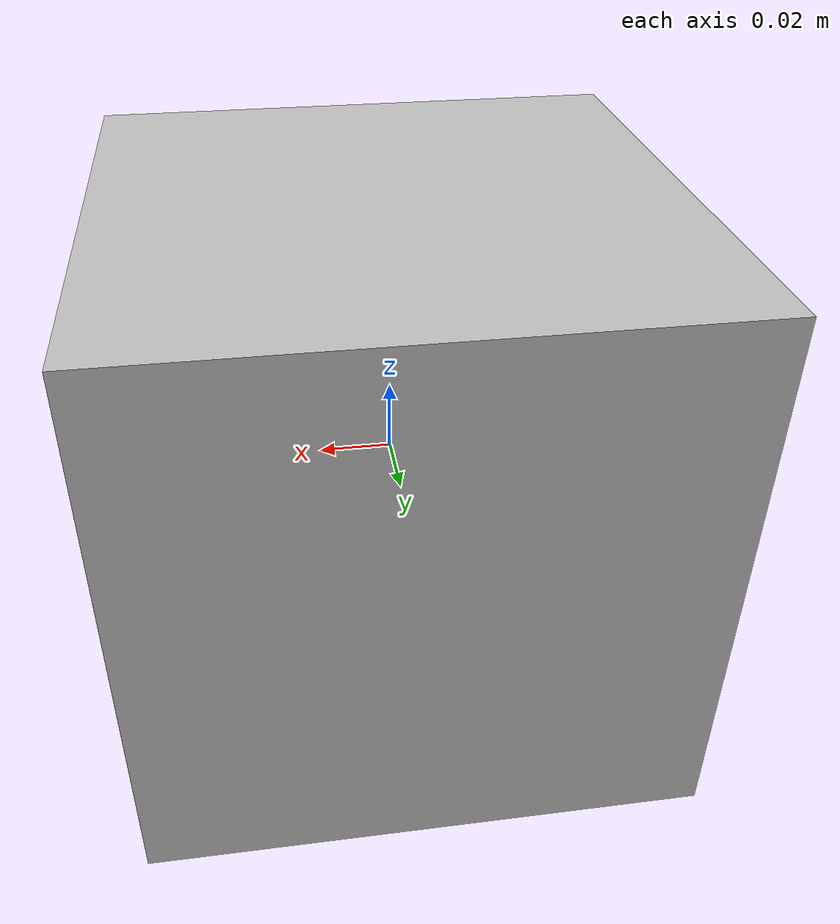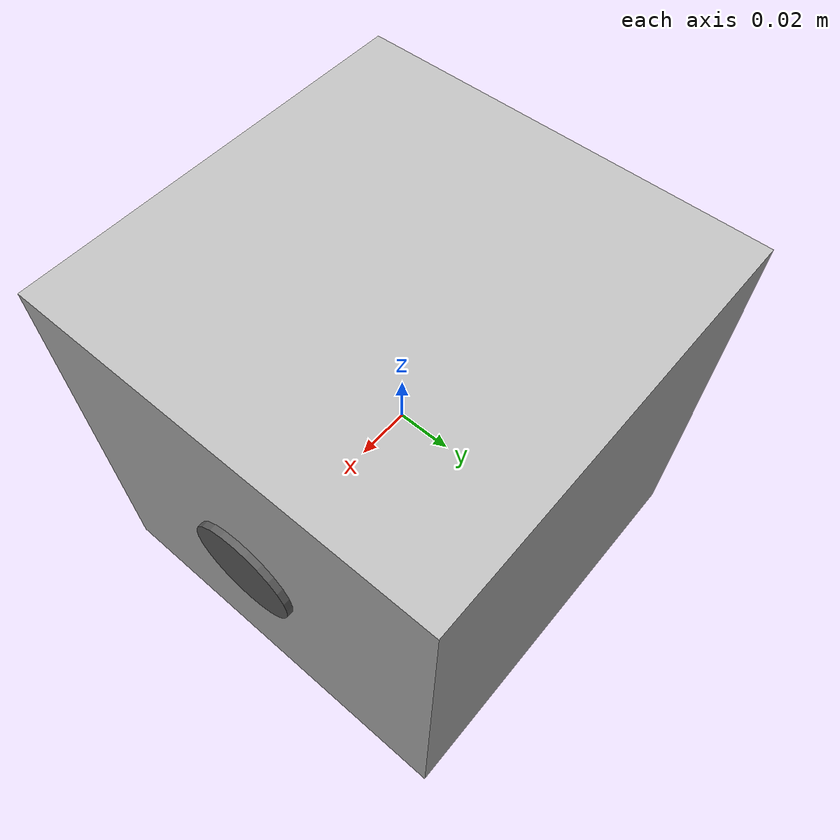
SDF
<sdf version='1.9'>
  <model name='axis_camera'>
    <link name='wall_link'>
      <inertial>
        <pose>0 0 0 0 0 0</pose>
        <mass>2</mass>
        <inertia>
          <ixx>0.053333333333333337</ixx>
          <ixy>0</ixy>
          <ixz>0</ixz>
          <iyy>0.053333333333333337</iyy>
          <iyz>0</iyz>
          <izz>0.053333333333333337</izz>
        </inertia>
      </inertial>
      <gravity>false</gravity>
    </link>
    <joint name='pan_joint' type='revolute'>
      <pose relative_to='wall_link'>0 0 0 0 0 0</pose>
      <parent>wall_link</parent>
      <child>pan_link</child>
      <axis>
        <xyz>0 0 1</xyz>
        <limit>
          <lower>-600.27999999999997</lower>
          <upper>600.27999999999997</upper>
          <effort>1000</effort>
          <velocity>30</velocity>
        </limit>
        <dynamics>
          <damping>0</damping>
          <friction>0</friction>
          <spring_reference>0</spring_reference>
          <spring_stiffness>0</spring_stiffness>
        </dynamics>
      </axis>
    </joint>
    <link name='pan_link'>
      <pose relative_to='pan_joint'>0 0 0 0 0 0</pose>
      <inertial>
        <pose>0 0 0 0 0 0</pose>
        <mass>9.9999999999999995e-07</mass>
        <inertia>
          <ixx>1.6666666666666671e-11</ixx>
          <ixy>0</ixy>
          <ixz>0</ixz>
          <iyy>1.6666666666666671e-11</iyy>
          <iyz>0</iyz>
          <izz>1.6666666666666671e-11</izz>
        </inertia>
      </inertial>
      <gravity>false</gravity>
    </link>
    <joint name='tilt_joint' type='revolute'>
      <pose relative_to='pan_link'>0 0 0 0 0 0</pose>
      <parent>pan_link</parent>
      <child>tilt_link</child>
      <axis>
        <xyz>0 1 0</xyz>
        <limit>
          <lower>-600.27999999999997</lower>
          <upper>600.27999999999997</upper>
          <effort>1000</effort>
          <velocity>30</velocity>
        </limit>
        <dynamics>
          <damping>0</damping>
          <friction>0</friction>
          <spring_reference>0</spring_reference>
          <spring_stiffness>0</spring_stiffness>
        </dynamics>
      </axis>
    </joint>
    <link name='tilt_link'>
      <pose relative_to='tilt_joint'>0 0 0 0 0 0</pose>
      <inertial>
        <pose>0 0 0 0 0 0</pose>
        <mass>9.9999999999999995e-07</mass>
        <inertia>
          <ixx>1.6666666666666671e-11</ixx>
          <ixy>0</ixy>
          <ixz>0</ixz>
          <iyy>1.6666666666666671e-11</iyy>
          <iyz>0</iyz>
          <izz>1.6666666666666671e-11</izz>
        </inertia>
      </inertial>
      <gravity>false</gravity>
    </link>
    <joint name='chassis_joint' type='fixed'>
      <pose relative_to='tilt_link'>0 0 0 0 0 0</pose>
      <parent>tilt_link</parent>
      <child>chassis_link</child>
      <axis>
        <dynamics>
          <spring_reference>0</spring_reference>
          <spring_stiffness>0</spring_stiffness>
        </dynamics>
        <xyz>0 0 1</xyz>
        <limit>
          <lower>-10000000000000000</lower>
          <upper>10000000000000000</upper>
        </limit>
      </axis>
      <physics>
        <ode>
          <limit>
            <cfm>0</cfm>
            <erp>0.20000000000000001</erp>
          </limit>
        </ode>
      </physics>
    </joint>
    <link name='chassis_link'>
      <pose relative_to='chassis_joint'>0 0 0 0 0 0</pose>
      <inertial>
        <pose>0 0 0 0 0 0</pose>
        <mass>9.9999999999999995e-07</mass>
        <inertia>
          <ixx>1.6666666666666671e-11</ixx>
          <ixy>0</ixy>
          <ixz>0</ixz>
          <iyy>1.6666666666666671e-11</iyy>
          <iyz>0</iyz>
          <izz>1.6666666666666671e-11</izz>
        </inertia>
      </inertial>
      <visual name='chassis_link_visual'>
        <pose>0 0 0 0 0 0</pose>
        <geometry>
          <box>
            <size>0.15 0.15 0.15</size>
          </box>
        </geometry>
      </visual>
      <gravity>false</gravity>
    </link>
    <joint name='camera_joint' type='fixed'>
      <pose relative_to='chassis_link'>0.075 0 0 0 0 0</pose>
      <parent>chassis_link</parent>
      <child>camera_link</child>
      <axis>
        <dynamics>
          <spring_reference>0</spring_reference>
          <spring_stiffness>0</spring_stiffness>
        </dynamics>
        <xyz>0 0 1</xyz>
        <limit>
          <lower>-10000000000000000</lower>
          <upper>10000000000000000</upper>
        </limit>
      </axis>
      <physics>
        <ode>
          <limit>
            <cfm>0</cfm>
            <erp>0.20000000000000001</erp>
          </limit>
        </ode>
      </physics>
    </joint>
    <link name='camera_link'>
      <pose relative_to='camera_joint'>0 0 0 0 0 0</pose>
      <inertial>
        <pose>0 0 0 0 0 0</pose>
        <mass>9.9999999999999995e-07</mass>
        <inertia>
          <ixx>1.6666666666666671e-11</ixx>
          <ixy>0</ixy>
          <ixz>0</ixz>
          <iyy>1.6666666666666671e-11</iyy>
          <iyz>0</iyz>
          <izz>1.6666666666666671e-11</izz>
        </inertia>
      </inertial>
      <visual name='camera_link_visual'>
        <pose>0 0 0 0 1.570796326794897 0</pose>
        <geometry>
          <cylinder>
            <length>0.0050000000000000001</length>
            <radius>0.02</radius>
          </cylinder>
        </geometry>
        <material>
          <diffuse>0.375 0.375 0.375 1</diffuse>
          <ambient>0.375 0.375 0.375 1</ambient>
        </material>
      </visual>
      <gravity>false</gravity>
      <sensor name='camera' type='camera'>
        <camera>
          <horizontal_fov>1.9198</horizontal_fov>
          <image>
            <width>640</width>
            <height>480</height>
          </image>
          <clip>
            <near>0.10000000000000001</near>
            <far>25</far>
          </clip>
        </camera>
        <always_on>true</always_on>
        <update_rate>30</update_rate>
        <visualize>false</visualize>
        <topic>right_camera</topic>
        <plugin name='camera_controller' filename='libgazebo_ros_camera.so'>
          <ros>
            <namespace>axis_camera</namespace>
          </ros>
        </plugin>
      </sensor>
    </link>
    <joint name='imu_joint' type='fixed'>
      <pose relative_to='chassis_link'>0 0 0 0 0 0</pose>
      <parent>chassis_link</parent>
      <child>imu_link</child>
      <axis>
        <dynamics>
          <spring_reference>0</spring_reference>
          <spring_stiffness>0</spring_stiffness>
        </dynamics>
        <xyz>0 0 1</xyz>
        <limit>
          <lower>-10000000000000000</lower>
          <upper>10000000000000000</upper>
        </limit>
      </axis>
      <physics>
        <ode>
          <limit>
            <cfm>0</cfm>
            <erp>0.20000000000000001</erp>
          </limit>
        </ode>
      </physics>
    </joint>
    <link name='imu_link'>
      <pose relative_to='imu_joint'>0 0 0 0 0 0</pose>
      <inertial>
        <pose>0 0 0 0 0 0</pose>
        <mass>9.9999999999999995e-07</mass>
        <inertia>
          <ixx>1.6666666666666671e-11</ixx>
          <ixy>0</ixy>
          <ixz>0</ixz>
          <iyy>1.6666666666666671e-11</iyy>
          <iyz>0</iyz>
          <izz>1.6666666666666671e-11</izz>
        </inertia>
      </inertial>
      <gravity>false</gravity>
      <sensor name='axis_imu_sensor' type='imu'>
        <always_on>true</always_on>
        <update_rate>10</update_rate>
      </sensor>
    </link>
    <static>false</static>
    <plugin name='gazebo_ros2_control' filename='libgazebo_ros2_control.so'>
      <parameters>/home/neo/workspace/install/gazebo_simulation/share/gazebo_simulation/config/axis_camera_controller.yaml</parameters>
    </plugin>
  </model>
</sdf>
